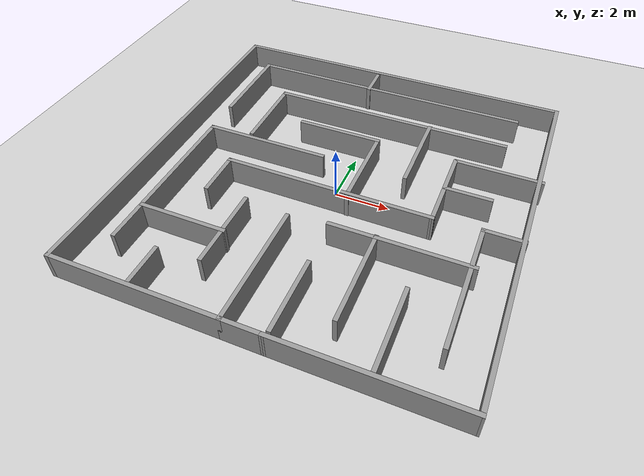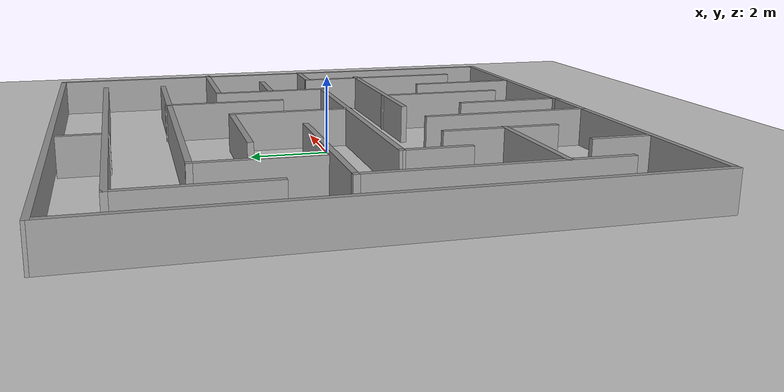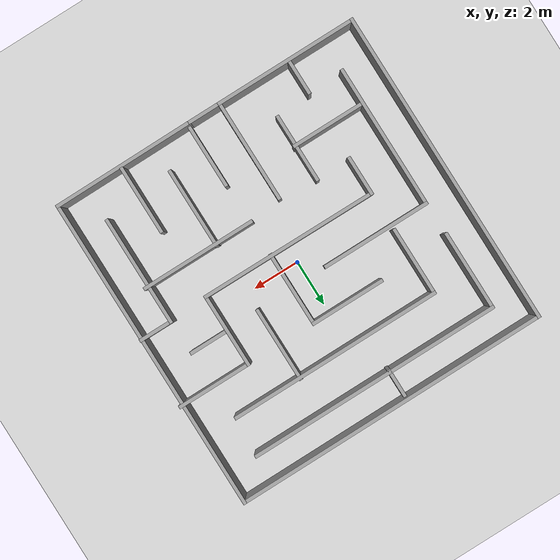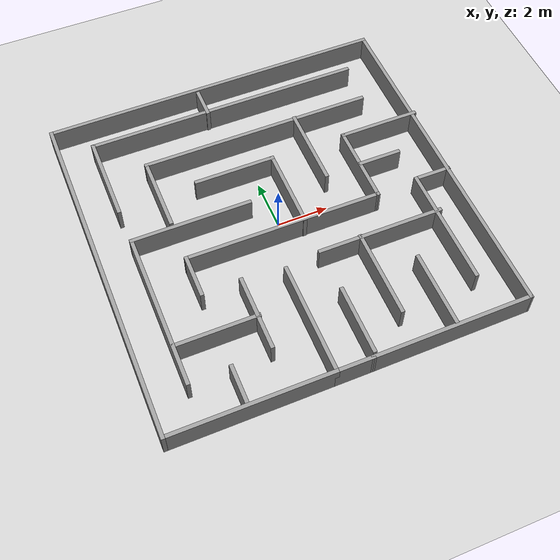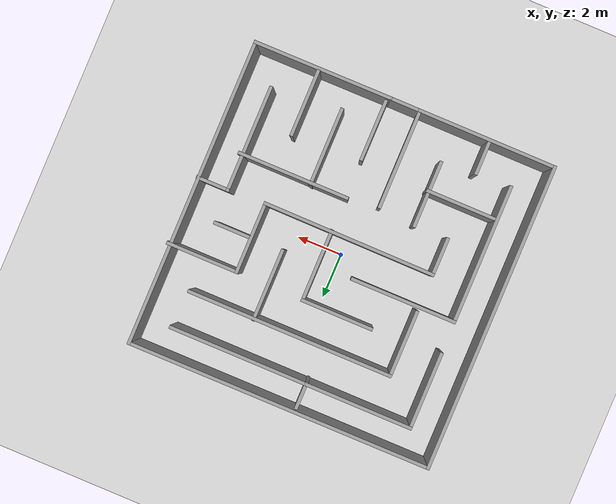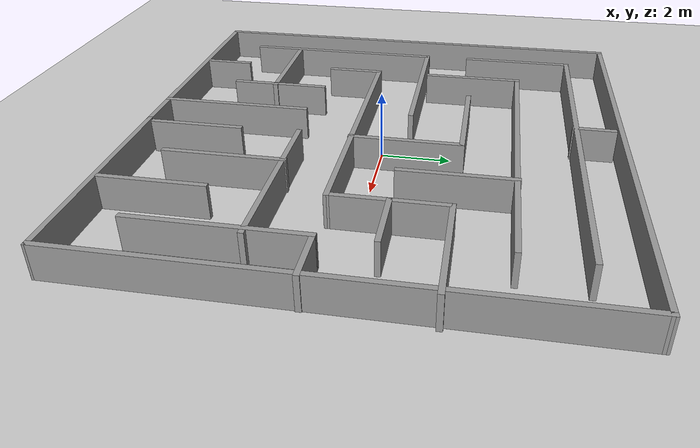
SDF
<sdf version="1.7">
 <world name="default">
  <light name="sun" type="directional">
   <pose>0 0 10 0 -0 0</pose>
   <diffuse>0.8 0.8 0.8 1</diffuse>
   <specular>0.2 0.2 0.2 1</specular>
   <attenuation>
    <range>1000</range>
    <constant>0.9</constant>
    <linear>0.01</linear>
    <quadratic>0.001</quadratic>
   </attenuation>
   <direction>-0.5 0.1 -0.9</direction>
   <spot><inner_angle>0</inner_angle><outer_angle>0</outer_angle><falloff>0</falloff></spot>
  </light>
  <model name="ground_plane">
   <static>1</static>
   <link name="link">
    <collision name="collision">
     <geometry><plane><normal>0 0 1</normal><size>100 100</size></plane></geometry>
     <surface><friction><ode><mu>100</mu><mu2>50</mu2></ode></friction></surface>
    </collision>
    <visual name="visual">
     <cast_shadows>0</cast_shadows>
     <geometry><plane><normal>0 0 1</normal><size>100 100</size></plane></geometry>
     <material>
      <script><uri>file://media/materials/scripts/gazebo.material</uri><name>Gazebo/Grey</name></script>
     </material>
    </visual>
   </link>
  </model>
  <gravity>0 0 -9.8</gravity>
  <magnetic_field>6e-06 2.3e-05 -4.2e-05</magnetic_field>
  <atmosphere type="adiabatic"/>
  <physics type="ode">
   <max_step_size>0.001</max_step_size>
   <real_time_factor>1</real_time_factor>
   <real_time_update_rate>1000</real_time_update_rate>
  </physics>
  <scene><ambient>0.4 0.4 0.4 1</ambient><background>0.7 0.7 0.7 1</background><shadows>1</shadows></scene>
  <audio><device>default</device></audio>
  <spherical_coordinates>
   <surface_model>EARTH_WGS84</surface_model>
   <latitude_deg>0</latitude_deg>
   <longitude_deg>0</longitude_deg>
   <elevation>0</elevation>
   <heading_deg>0</heading_deg>
  </spherical_coordinates>
  <model name="labyrinth_ver_2">
   <pose>0.001425 -0.010607 0 0 -0 0</pose>
   <link name="Wall_0">
    <collision name="Wall_0_Collision">
     <geometry><box><size>13.781 0.15 1</size></box></geometry>
     <pose>0 0 0.5 0 -0 0</pose>
    </collision>
    <visual name="Wall_0_Visual">
     <pose>0 0 0.5 0 -0 0</pose>
     <geometry><box><size>13.781 0.15 1</size></box></geometry>
     <material>
      <script><uri>file://media/materials/scripts/gazebo.material</uri><name>Gazebo/Grey</name></script>
      <ambient>1 1 1 1</ambient>
     </material>
     <meta><layer>0</layer></meta>
    </visual>
    <pose>-6.82843 -0.014893 0 0 -0 -1.5708</pose>
   </link>
   <link name="Wall_1">
    <collision name="Wall_1_Collision">
     <geometry><box><size>6.25 0.15 1</size></box></geometry>
     <pose>0 0 0.5 0 -0 0</pose>
    </collision>
    <visual name="Wall_1_Visual">
     <pose>0 0 0.5 0 -0 0</pose>
     <geometry><box><size>6.25 0.15 1</size></box></geometry>
     <material>
      <script><uri>file://media/materials/scripts/gazebo.material</uri><name>Gazebo/Grey</name></script>
      <ambient>1 1 1 1</ambient>
     </material>
     <meta><layer>0</layer></meta>
    </visual>
    <pose>-3.77842 -6.83039 0 0 -0 0</pose>
   </link>
   <link name="Wall_11">
    <collision name="Wall_11_Collision">
     <geometry><box><size>11 0.15 1</size></box></geometry>
     <pose>0 0 0.5 0 -0 0</pose>
    </collision>
    <visual name="Wall_11_Visual">
     <pose>0 0 0.5 0 -0 0</pose>
     <geometry><box><size>11 0.15 1</size></box></geometry>
     <material>
      <script><uri>file://media/materials/scripts/gazebo.material</uri><name>Gazebo/Grey</name></script>
      <ambient>1 1 1 1</ambient>
     </material>
     <meta><layer>0</layer></meta>
    </visual>
    <pose>-0.067425 5.55261 0 0 -0 0</pose>
   </link>
   <link name="Wall_13">
    <collision name="Wall_13_Collision">
     <geometry><box><size>3.5 0.15 1</size></box></geometry>
     <pose>0 0 0.5 0 -0 0</pose>
    </collision>
    <visual name="Wall_13_Visual">
     <pose>0 0 0.5 0 -0 0</pose>
     <geometry><box><size>3.5 0.15 1</size></box></geometry>
     <material>
      <script><uri>file://media/materials/scripts/gazebo.material</uri><name>Gazebo/Grey</name></script>
      <ambient>1 1 1 1</ambient>
     </material>
     <meta><layer>0</layer></meta>
    </visual>
    <pose>-5.49242 3.87761 0 0 -0 -1.5708</pose>
   </link>
   <link name="Wall_15">
    <collision name="Wall_15_Collision">
     <geometry><box><size>9.25 0.15 1</size></box></geometry>
     <pose>0 0 0.5 0 -0 0</pose>
    </collision>
    <visual name="Wall_15_Visual">
     <pose>0 0 0.5 0 -0 0</pose>
     <geometry><box><size>9.25 0.15 1</size></box></geometry>
     <material>
      <script><uri>file://media/materials/scripts/gazebo.material</uri><name>Gazebo/Grey</name></script>
      <ambient>1 1 1 1</ambient>
     </material>
     <meta><layer>0</layer></meta>
    </visual>
    <pose>0.678575 3.87061 0 0 -0 0</pose>
   </link>
   <link name="Wall_17">
    <collision name="Wall_17_Collision">
     <geometry><box><size>3.031 0.15 1</size></box></geometry>
     <pose>0 0 0.5 0 -0 0</pose>
    </collision>
    <visual name="Wall_17_Visual">
     <pose>0 0 0.5 0 -0 0</pose>
     <geometry><box><size>3.031 0.15 1</size></box></geometry>
     <material>
      <script><uri>file://media/materials/scripts/gazebo.material</uri><name>Gazebo/Grey</name></script>
      <ambient>1 1 1 1</ambient>
     </material>
     <meta><layer>0</layer></meta>
    </visual>
    <pose>-3.87142 2.43011 0 0 -0 -1.5708</pose>
   </link>
   <link name="Wall_19">
    <collision name="Wall_19_Collision">
     <geometry><box><size>4.75 0.15 1</size></box></geometry>
     <pose>0 0 0.5 0 -0 0</pose>
    </collision>
    <visual name="Wall_19_Visual">
     <pose>0 0 0.5 0 -0 0</pose>
     <geometry><box><size>4.75 0.15 1</size></box></geometry>
     <material>
      <script><uri>file://media/materials/scripts/gazebo.material</uri><name>Gazebo/Grey</name></script>
      <ambient>1 1 1 1</ambient>
     </material>
     <meta><layer>0</layer></meta>
    </visual>
    <pose>-3.16242 0.750607 0 0 -0 0</pose>
   </link>
   <link name="Wall_2">
    <collision name="Wall_2_Collision">
     <geometry><box><size>4.49979 0.15 1</size></box></geometry>
     <pose>0 0 0.5 0 -0 0</pose>
    </collision>
    <visual name="Wall_2_Visual">
     <pose>0 0 0.5 0 -0 0</pose>
     <geometry><box><size>4.49979 0.15 1</size></box></geometry>
     <material>
      <script><uri>file://media/materials/scripts/gazebo.material</uri><name>Gazebo/Grey</name></script>
      <ambient>1 1 1 1</ambient>
     </material>
     <meta><layer>0</layer></meta>
    </visual>
    <pose>-0.728425 -4.65539 0 0 -0 1.5708</pose>
   </link>
   <link name="Wall_21">
    <collision name="Wall_21_Collision">
     <geometry><box><size>6.25 0.15 1</size></box></geometry>
     <pose>0 0 0.5 0 -0 0</pose>
    </collision>
    <visual name="Wall_21_Visual">
     <pose>0 0 0.5 0 -0 0</pose>
     <geometry><box><size>6.25 0.15 1</size></box></geometry>
     <material>
      <script><uri>file://media/materials/scripts/gazebo.material</uri><name>Gazebo/Grey</name></script>
      <ambient>1 1 1 1</ambient>
     </material>
     <meta><layer>0</layer></meta>
    </visual>
    <pose>-5.46242 -2.29939 0 0 -0 -1.5708</pose>
   </link>
   <link name="Wall_23">
    <collision name="Wall_23_Collision">
     <geometry><box><size>3.25 0.15 1</size></box></geometry>
     <pose>0 0 0.5 0 -0 0</pose>
    </collision>
    <visual name="Wall_23_Visual">
     <pose>0 0 0.5 0 -0 0</pose>
     <geometry><box><size>3.25 0.15 1</size></box></geometry>
     <material>
      <script><uri>file://media/materials/scripts/gazebo.material</uri><name>Gazebo/Grey</name></script>
      <ambient>1 1 1 1</ambient>
     </material>
     <meta><layer>0</layer></meta>
    </visual>
    <pose>-3.88143 -3.86939 0 0 -0 0</pose>
   </link>
   <link name="Wall_25">
    <collision name="Wall_25_Collision">
     <geometry><box><size>3 0.15 1</size></box></geometry>
     <pose>0 0 0.5 0 -0 0</pose>
    </collision>
    <visual name="Wall_25_Visual">
     <pose>0 0 0.5 0 -0 0</pose>
     <geometry><box><size>3 0.15 1</size></box></geometry>
     <material>
      <script><uri>file://media/materials/scripts/gazebo.material</uri><name>Gazebo/Grey</name></script>
      <ambient>1 1 1 1</ambient>
     </material>
     <meta><layer>0</layer></meta>
    </visual>
    <pose>-2.37242 -3.73339 0 0 -0 -1.5708</pose>
   </link>
   <link name="Wall_27">
    <collision name="Wall_27_Collision">
     <geometry><box><size>1.5 0.15 1</size></box></geometry>
     <pose>0 0 0.5 0 -0 0</pose>
    </collision>
    <visual name="Wall_27_Visual">
     <pose>0 0 0.5 0 -0 0</pose>
     <geometry><box><size>1.5 0.15 1</size></box></geometry>
     <material>
      <script><uri>file://media/materials/scripts/gazebo.material</uri><name>Gazebo/Grey</name></script>
      <ambient>1 1 1 1</ambient>
     </material>
     <meta><layer>0</layer></meta>
    </visual>
    <pose>-3.90243 -6.01239 0 0 -0 -1.5708</pose>
   </link>
   <link name="Wall_29">
    <collision name="Wall_29_Collision">
     <geometry><box><size>2.75 0.15 1</size></box></geometry>
     <pose>0 0 0.5 0 -0 0</pose>
    </collision>
    <visual name="Wall_29_Visual">
     <pose>0 0 0.5 0 -0 0</pose>
     <geometry><box><size>2.75 0.15 1</size></box></geometry>
     <material>
      <script><uri>file://media/materials/scripts/gazebo.material</uri><name>Gazebo/Grey</name></script>
      <ambient>1 1 1 1</ambient>
     </material>
     <meta><layer>0</layer></meta>
    </visual>
    <pose>0.747575 -5.32239 0 0 -0 -1.5708</pose>
   </link>
   <link name="Wall_31">
    <collision name="Wall_31_Collision">
     <geometry><box><size>5 0.15 1</size></box></geometry>
     <pose>0 0 0.5 0 -0 0</pose>
    </collision>
    <visual name="Wall_31_Visual">
     <pose>0 0 0.5 0 -0 0</pose>
     <geometry><box><size>5 0.15 1</size></box></geometry>
     <material>
      <script><uri>file://media/materials/scripts/gazebo.material</uri><name>Gazebo/Grey</name></script>
      <ambient>1 1 1 1</ambient>
     </material>
     <meta><layer>0</layer></meta>
    </visual>
    <pose>3.11158 -2.27839 0 0 -0 0</pose>
   </link>
   <link name="Wall_33">
    <collision name="Wall_33_Collision">
     <geometry><box><size>4.781 0.15 1</size></box></geometry>
     <pose>0 0 0.5 0 -0 0</pose>
    </collision>
    <visual name="Wall_33_Visual">
     <pose>0 0 0.5 0 -0 0</pose>
     <geometry><box><size>4.781 0.15 1</size></box></geometry>
     <material>
      <script><uri>file://media/materials/scripts/gazebo.material</uri><name>Gazebo/Grey</name></script>
      <ambient>1 1 1 1</ambient>
     </material>
     <meta><layer>0</layer></meta>
    </visual>
    <pose>5.39757 -2.97189 0 0 -0 -1.5708</pose>
   </link>
   <link name="Wall_35">
    <collision name="Wall_35_Collision">
     <geometry><box><size>1.49975 0.15 1</size></box></geometry>
     <pose>0 0 0.5 0 -0 0</pose>
    </collision>
    <visual name="Wall_35_Visual">
     <pose>0 0 0.5 0 -0 0</pose>
     <geometry><box><size>1.49975 0.15 1</size></box></geometry>
     <material>
      <script><uri>file://media/materials/scripts/gazebo.material</uri><name>Gazebo/Grey</name></script>
      <ambient>1 1 1 1</ambient>
     </material>
     <meta><layer>0</layer></meta>
    </visual>
    <pose>6.07257 -0.656893 0 0 -0 -0.000741</pose>
   </link>
   <link name="Wall_37">
    <collision name="Wall_37_Collision">
     <geometry><box><size>3.5 0.15 1</size></box></geometry>
     <pose>0 0 0.5 0 -0 0</pose>
    </collision>
    <visual name="Wall_37_Visual">
     <pose>0 0 0.5 0 -0 0</pose>
     <geometry><box><size>3.5 0.15 1</size></box></geometry>
     <material>
      <script><uri>file://media/materials/scripts/gazebo.material</uri><name>Gazebo/Grey</name></script>
      <ambient>1 1 1 1</ambient>
     </material>
     <meta><layer>0</layer></meta>
    </visual>
    <pose>2.30757 -3.92239 0 0 -0 -1.5708</pose>
   </link>
   <link name="Wall_39">
    <collision name="Wall_39_Collision">
     <geometry><box><size>3 0.15 1</size></box></geometry>
     <pose>0 0 0.5 0 -0 0</pose>
    </collision>
    <visual name="Wall_39_Visual">
     <pose>0 0 0.5 0 -0 0</pose>
     <geometry><box><size>3 0.15 1</size></box></geometry>
     <material>
      <script><uri>file://media/materials/scripts/gazebo.material</uri><name>Gazebo/Grey</name></script>
      <ambient>1 1 1 1</ambient>
     </material>
     <meta><layer>0</layer></meta>
    </visual>
    <pose>3.83758 -5.26339 0 0 -0 -1.5708</pose>
   </link>
   <link name="Wall_4">
    <collision name="Wall_4_Collision">
     <geometry><box><size>1.50017 0.15 1</size></box></geometry>
     <pose>0 0 0.5 0 -0 0</pose>
    </collision>
    <visual name="Wall_4_Visual">
     <pose>0 0 0.5 0 -0 0</pose>
     <geometry><box><size>1.50017 0.15 1</size></box></geometry>
     <material>
      <script><uri>file://media/materials/scripts/gazebo.material</uri><name>Gazebo/Grey</name></script>
      <ambient>1 1 1 1</ambient>
     </material>
     <meta><layer>0</layer></meta>
    </visual>
    <pose>-0.053425 -6.83039 0 0 -0 0</pose>
   </link>
   <link name="Wall_41">
    <collision name="Wall_41_Collision">
     <geometry><box><size>1.75036 0.15 1</size></box></geometry>
     <pose>0 0 0.5 0 -0 0</pose>
    </collision>
    <visual name="Wall_41_Visual">
     <pose>0 0 0.5 0 -0 0</pose>
     <geometry><box><size>1.75036 0.15 1</size></box></geometry>
     <material>
      <script><uri>file://media/materials/scripts/gazebo.material</uri><name>Gazebo/Grey</name></script>
      <ambient>1 1 1 1</ambient>
     </material>
     <meta><layer>0</layer></meta>
    </visual>
    <pose>-3.87142 -1.51789 0 0 -0 -1.5708</pose>
   </link>
   <link name="Wall_43">
    <collision name="Wall_43_Collision">
     <geometry><box><size>7.75 0.15 1</size></box></geometry>
     <pose>0 0 0.5 0 -0 0</pose>
    </collision>
    <visual name="Wall_43_Visual">
     <pose>0 0 0.5 0 -0 0</pose>
     <geometry><box><size>7.75 0.15 1</size></box></geometry>
     <material>
      <script><uri>file://media/materials/scripts/gazebo.material</uri><name>Gazebo/Grey</name></script>
      <ambient>1 1 1 1</ambient>
     </material>
     <meta><layer>0</layer></meta>
    </visual>
    <pose>-0.071425 -0.732893 0 0 -0 -0.004079</pose>
   </link>
   <link name="Wall_45">
    <collision name="Wall_45_Collision">
     <geometry><box><size>3.25 0.15 1</size></box></geometry>
     <pose>0 0 0.5 0 -0 0</pose>
    </collision>
    <visual name="Wall_45_Visual">
     <pose>0 0 0.5 0 -0 0</pose>
     <geometry><box><size>3.25 0.15 1</size></box></geometry>
     <material>
      <script><uri>file://media/materials/scripts/gazebo.material</uri><name>Gazebo/Grey</name></script>
      <ambient>1 1 1 1</ambient>
     </material>
     <meta><layer>0</layer></meta>
    </visual>
    <pose>3.72858 0.801607 0 0 -0 1.5708</pose>
   </link>
   <link name="Wall_46">
    <collision name="Wall_46_Collision">
     <geometry><box><size>3.25 0.15 1</size></box></geometry>
     <pose>0 0 0.5 0 -0 0</pose>
    </collision>
    <visual name="Wall_46_Visual">
     <pose>0 0 0.5 0 -0 0</pose>
     <geometry><box><size>3.25 0.15 1</size></box></geometry>
     <material>
      <script><uri>file://media/materials/scripts/gazebo.material</uri><name>Gazebo/Grey</name></script>
      <ambient>1 1 1 1</ambient>
     </material>
     <meta><layer>0</layer></meta>
    </visual>
    <pose>5.27858 2.35161 0 0 -0 0</pose>
   </link>
   <link name="Wall_48">
    <collision name="Wall_48_Collision">
     <geometry><box><size>1.75 0.15 1</size></box></geometry>
     <pose>0 0 0.5 0 -0 0</pose>
    </collision>
    <visual name="Wall_48_Visual">
     <pose>0 0 0.5 0 -0 0</pose>
     <geometry><box><size>1.75 0.15 1</size></box></geometry>
     <material>
      <script><uri>file://media/materials/scripts/gazebo.material</uri><name>Gazebo/Grey</name></script>
      <ambient>1 1 1 1</ambient>
     </material>
     <meta><layer>0</layer></meta>
    </visual>
    <pose>4.54558 0.811607 0 0 -0 0</pose>
   </link>
   <link name="Wall_5">
    <collision name="Wall_5_Collision">
     <geometry><box><size>6.25 0.15 1</size></box></geometry>
     <pose>0 0 0.5 0 -0 0</pose>
    </collision>
    <visual name="Wall_5_Visual">
     <pose>0 0 0.5 0 -0 0</pose>
     <geometry><box><size>6.25 0.15 1</size></box></geometry>
     <material>
      <script><uri>file://media/materials/scripts/gazebo.material</uri><name>Gazebo/Grey</name></script>
      <ambient>1 1 1 1</ambient>
     </material>
     <meta><layer>0</layer></meta>
    </visual>
    <pose>3.67157 -6.81489 0 0 -0 0.005082</pose>
   </link>
   <link name="Wall_50">
    <collision name="Wall_50_Collision">
     <geometry><box><size>3.25 0.15 1</size></box></geometry>
     <pose>0 0 0.5 0 -0 0</pose>
    </collision>
    <visual name="Wall_50_Visual">
     <pose>0 0 0.5 0 -0 0</pose>
     <geometry><box><size>3.25 0.15 1</size></box></geometry>
     <material>
      <script><uri>file://media/materials/scripts/gazebo.material</uri><name>Gazebo/Grey</name></script>
      <ambient>1 1 1 1</ambient>
     </material>
     <meta><layer>0</layer></meta>
    </visual>
    <pose>-0.822425 2.37161 0 0 -0 0</pose>
   </link>
   <link name="Wall_51">
    <collision name="Wall_51_Collision">
     <geometry><box><size>3.281 0.15 1</size></box></geometry>
     <pose>0 0 0.5 0 -0 0</pose>
    </collision>
    <visual name="Wall_51_Visual">
     <pose>0 0 0.5 0 -0 0</pose>
     <geometry><box><size>3.281 0.15 1</size></box></geometry>
     <material>
      <script><uri>file://media/materials/scripts/gazebo.material</uri><name>Gazebo/Grey</name></script>
      <ambient>1 1 1 1</ambient>
     </material>
     <meta><layer>0</layer></meta>
    </visual>
    <pose>0.727575 0.806107 0 0 -0 -1.5708</pose>
   </link>
   <link name="Wall_53">
    <collision name="Wall_53_Collision">
     <geometry><box><size>3.25 0.15 1</size></box></geometry>
     <pose>0 0 0.5 0 -0 0</pose>
    </collision>
    <visual name="Wall_53_Visual">
     <pose>0 0 0.5 0 -0 0</pose>
     <geometry><box><size>3.25 0.15 1</size></box></geometry>
     <material>
      <script><uri>file://media/materials/scripts/gazebo.material</uri><name>Gazebo/Grey</name></script>
      <ambient>1 1 1 1</ambient>
     </material>
     <meta><layer>0</layer></meta>
    </visual>
    <pose>2.30757 2.35061 0 0 -0 -1.5708</pose>
   </link>
   <link name="Wall_6">
    <collision name="Wall_6_Collision">
     <geometry><box><size>13.78 0.15 1</size></box></geometry>
     <pose>0 0 0.5 0 -0 0</pose>
    </collision>
    <visual name="Wall_6_Visual">
     <pose>0 0 0.5 0 -0 0</pose>
     <geometry><box><size>13.78 0.15 1</size></box></geometry>
     <material>
      <script><uri>file://media/materials/scripts/gazebo.material</uri><name>Gazebo/Grey</name></script>
      <ambient>1 1 1 1</ambient>
     </material>
     <meta><layer>0</layer></meta>
    </visual>
    <pose>6.72157 0.015607 0 0 -0 1.5708</pose>
   </link>
   <link name="Wall_7">
    <collision name="Wall_7_Collision">
     <geometry><box><size>13.7 0.15 1</size></box></geometry>
     <pose>0 0 0.5 0 -0 0</pose>
    </collision>
    <visual name="Wall_7_Visual">
     <pose>0 0 0.5 0 -0 0</pose>
     <geometry><box><size>13.7 0.15 1</size></box></geometry>
     <material>
      <script><uri>file://media/materials/scripts/gazebo.material</uri><name>Gazebo/Grey</name></script>
      <ambient>1 1 1 1</ambient>
     </material>
     <meta><layer>0</layer></meta>
    </visual>
    <pose>-0.053425 6.81561 0 0 -0 -3.13938</pose>
   </link>
   <link name="Wall_9">
    <collision name="Wall_9_Collision">
     <geometry><box><size>1.25 0.15 1</size></box></geometry>
     <pose>0 0 0.5 0 -0 0</pose>
    </collision>
    <visual name="Wall_9_Visual">
     <pose>0 0 0.5 0 -0 0</pose>
     <geometry><box><size>1.25 0.15 1</size></box></geometry>
     <material>
      <script><uri>file://media/materials/scripts/gazebo.material</uri><name>Gazebo/Grey</name></script>
      <ambient>1 1 1 1</ambient>
     </material>
     <meta><layer>0</layer></meta>
    </visual>
    <pose>-0.771425 6.06561 0 0 -0 1.5708</pose>
   </link>
   <static>1</static>
  </model>
 </world>
</sdf>
